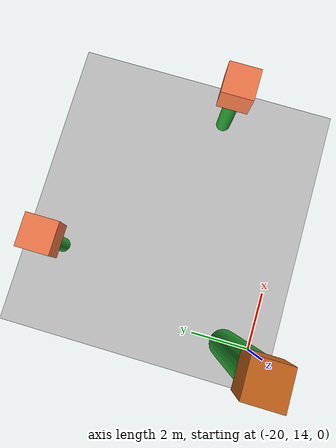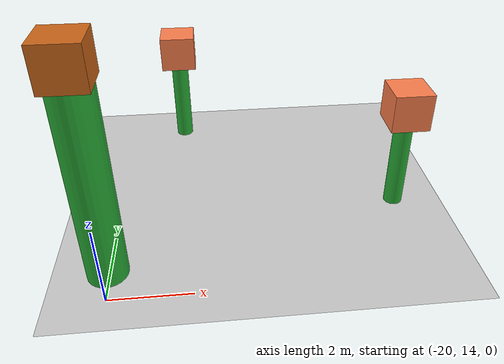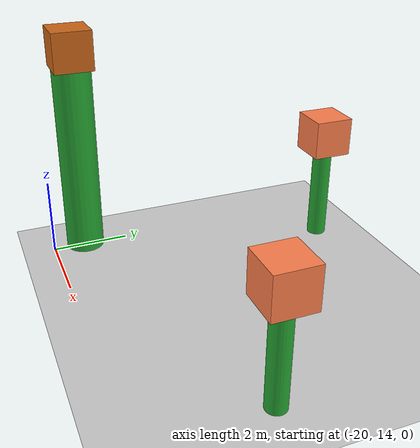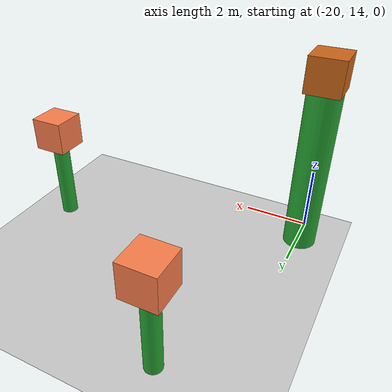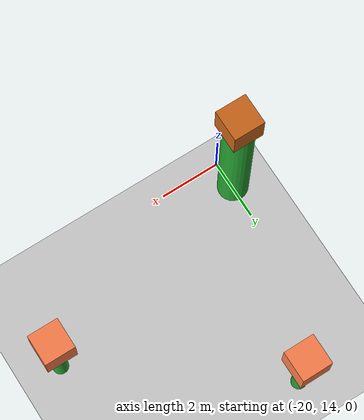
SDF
<sdf version="1.7">
 <world name="default">
  <model name="ground_plane">
   <static>1</static>
   <link name="link">
    <collision name="collision">
     <geometry><plane><normal>0 0 1</normal><size>100 100</size></plane></geometry>
     <surface>
      <contact><collide_bitmask>65535</collide_bitmask></contact>
      <friction><ode><mu>100</mu><mu2>50</mu2></ode></friction>
     </surface>
    </collision>
    <visual name="visual">
     <cast_shadows>0</cast_shadows>
     <geometry><plane><normal>0 0 1</normal><size>100 100</size></plane></geometry>
     <material>
      <script><uri>file://media/materials/scripts/gazebo.material</uri><name>Gazebo/Grey</name></script>
     </material>
    </visual>
   </link>
  </model>
  <model name="unit_cylinder_green_2_clone_clone_3_clone_0_clone_0_clone_15">
   <link name="link">
    <inertial>
     <mass>1</mass>
     <inertia><ixx>0.145833</ixx><ixy>0</ixy><ixz>0</ixz><iyy>0.145833</iyy><iyz>0</iyz><izz>0.125</izz></inertia>
    </inertial>
    <visual name="visual">
     <geometry><cylinder><radius>0.5</radius><length>5</length></cylinder></geometry>
     <material>
      <script><name>Gazebo/Green</name><uri>file://media/materials/scripts/gazebo.material</uri></script>
      <shader type="pixel"><normal_map>__default__</normal_map></shader>
      <ambient>0 1 0.3 1</ambient>
      <diffuse>0.7 0.7 0.7 1</diffuse>
      <specular>0.01 0.01 0.01 1</specular>
      <emissive>0 0 0 1</emissive>
     </material>
    </visual>
    <collision name="collision">
     <geometry><cylinder><radius>0.5</radius><length>5</length></cylinder></geometry>
     <surface>
      <friction>
       <ode><mu>1</mu><mu2>1</mu2><fdir1>0 0 0</fdir1><slip1>0</slip1><slip2>0</slip2></ode>
       <torsional>
        <coefficient>1</coefficient>
        <patch_radius>0</patch_radius>
        <surface_radius>0</surface_radius>
        <use_patch_radius>1</use_patch_radius>
        <ode><slip>0</slip></ode>
       </torsional>
      </friction>
      <bounce><restitution_coefficient>0</restitution_coefficient><threshold>1e+06</threshold></bounce>
      <contact>
       <collide_without_contact>0</collide_without_contact>
       <collide_without_contact_bitmask>1</collide_without_contact_bitmask>
       <collide_bitmask>1</collide_bitmask>
       <ode>
        <soft_cfm>0</soft_cfm>
        <soft_erp>0.2</soft_erp>
        <kp>1e+13</kp>
        <kd>1</kd>
        <max_vel>0.01</max_vel>
        <min_depth>0</min_depth>
       </ode>
       <bullet>
        <split_impulse>1</split_impulse>
        <split_impulse_penetration_threshold>-0.01</split_impulse_penetration_threshold>
        <soft_cfm>0</soft_cfm>
        <soft_erp>0.2</soft_erp>
        <kp>1e+13</kp>
        <kd>1</kd>
       </bullet>
      </contact>
     </surface>
    </collision>
   </link>
   <link name="link_3">
    <inertial>
     <mass>1</mass>
     <inertia>
      <ixx>0.166667</ixx>
      <ixy>0</ixy>
      <ixz>0</ixz>
      <iyy>0.166667</iyy>
      <iyz>0</iyz>
      <izz>0.166667</izz>
     </inertia>
    </inertial>
    <pose>0 0 3 0 -0 0.000935</pose>
    <visual name="visual">
     <geometry><box><size>1 1 1</size></box></geometry>
     <material>
      <lighting>1</lighting>
      <script><uri>file://media/materials/scripts/gazebo.material</uri><name>Gazebo/Grey</name></script>
      <shader type="pixel"><normal_map>__default__</normal_map></shader>
      <ambient>0.8 0.4 0.1 1</ambient>
      <diffuse>0.7 0.7 0.7 1</diffuse>
      <specular>0.01 0.01 0.01 1</specular>
      <emissive>0 0 0 1</emissive>
     </material>
    </visual>
    <collision name="collision">
     <geometry><box><size>1 1 1</size></box></geometry>
     <surface>
      <friction>
       <ode><mu>1</mu><mu2>1</mu2><fdir1>0 0 0</fdir1><slip1>0</slip1><slip2>0</slip2></ode>
       <torsional>
        <coefficient>1</coefficient>
        <patch_radius>0</patch_radius>
        <surface_radius>0</surface_radius>
        <use_patch_radius>1</use_patch_radius>
        <ode><slip>0</slip></ode>
       </torsional>
      </friction>
      <bounce><restitution_coefficient>0</restitution_coefficient><threshold>1e+06</threshold></bounce>
      <contact>
       <collide_without_contact>0</collide_without_contact>
       <collide_without_contact_bitmask>1</collide_without_contact_bitmask>
       <collide_bitmask>1</collide_bitmask>
       <ode>
        <soft_cfm>0</soft_cfm>
        <soft_erp>0.2</soft_erp>
        <kp>1e+13</kp>
        <kd>1</kd>
        <max_vel>0.01</max_vel>
        <min_depth>0</min_depth>
       </ode>
       <bullet>
        <split_impulse>1</split_impulse>
        <split_impulse_penetration_threshold>-0.01</split_impulse_penetration_threshold>
        <soft_cfm>0</soft_cfm>
        <soft_erp>0.2</soft_erp>
        <kp>1e+13</kp>
        <kd>1</kd>
       </bullet>
      </contact>
     </surface>
    </collision>
   </link>
   <static>1</static>
   <pose>-20.0541 14.8651 2.49999 0 0 -0.000935</pose>
  </model>
  <model name="unit_cylinder_green_2_clone_clone_3_clone_0_clone_0_clone_47">
   <link name="link">
    <inertial>
     <mass>1</mass>
     <inertia><ixx>0.145833</ixx><ixy>0</ixy><ixz>0</ixz><iyy>0.145833</iyy><iyz>0</iyz><izz>0.125</izz></inertia>
    </inertial>
    <pose>0 0 -1.25 0 -0 0</pose>
    <visual name="visual">
     <geometry><cylinder><radius>0.25</radius><length>2.5</length></cylinder></geometry>
     <material>
      <script><name>Gazebo/Green</name><uri>file://media/materials/scripts/gazebo.material</uri></script>
      <shader type="pixel"><normal_map>__default__</normal_map></shader>
      <ambient>0 1 0.3 1</ambient>
      <diffuse>0.7 0.7 0.7 1</diffuse>
      <specular>0.01 0.01 0.01 1</specular>
      <emissive>0 0 0 1</emissive>
     </material>
    </visual>
    <collision name="collision">
     <geometry><cylinder><radius>0.5</radius><length>5</length></cylinder></geometry>
     <surface>
      <friction>
       <ode><mu>1</mu><mu2>1</mu2><fdir1>0 0 0</fdir1><slip1>0</slip1><slip2>0</slip2></ode>
       <torsional>
        <coefficient>1</coefficient>
        <patch_radius>0</patch_radius>
        <surface_radius>0</surface_radius>
        <use_patch_radius>1</use_patch_radius>
        <ode><slip>0</slip></ode>
       </torsional>
      </friction>
      <bounce><restitution_coefficient>0</restitution_coefficient><threshold>1e+06</threshold></bounce>
      <contact>
       <collide_without_contact>0</collide_without_contact>
       <collide_without_contact_bitmask>1</collide_without_contact_bitmask>
       <collide_bitmask>1</collide_bitmask>
       <ode>
        <soft_cfm>0</soft_cfm>
        <soft_erp>0.2</soft_erp>
        <kp>1e+13</kp>
        <kd>1</kd>
        <max_vel>0.01</max_vel>
        <min_depth>0</min_depth>
       </ode>
       <bullet>
        <split_impulse>1</split_impulse>
        <split_impulse_penetration_threshold>-0.01</split_impulse_penetration_threshold>
        <soft_cfm>0</soft_cfm>
        <soft_erp>0.2</soft_erp>
        <kp>1e+13</kp>
        <kd>1</kd>
       </bullet>
      </contact>
     </surface>
    </collision>
   </link>
   <link name="link_3">
    <inertial>
     <mass>1</mass>
     <inertia>
      <ixx>0.166667</ixx>
      <ixy>0</ixy>
      <ixz>0</ixz>
      <iyy>0.166667</iyy>
      <iyz>0</iyz>
      <izz>0.166667</izz>
     </inertia>
    </inertial>
    <pose>0 0 0.5 0 -0 0.000935</pose>
    <visual name="visual">
     <geometry><box><size>1 1 1</size></box></geometry>
     <material>
      <lighting>1</lighting>
      <script><uri>file://media/materials/scripts/gazebo.material</uri><name>Gazebo/Grey</name></script>
      <shader type="pixel"><normal_map>__default__</normal_map></shader>
      <ambient>1 0.5 0.3 1</ambient>
      <diffuse>0.7 0.7 0.7 1</diffuse>
      <specular>0.01 0.01 0.01 1</specular>
      <emissive>0 0 0 1</emissive>
     </material>
    </visual>
    <collision name="collision">
     <geometry><box><size>1 1 1</size></box></geometry>
     <surface>
      <friction>
       <ode><mu>1</mu><mu2>1</mu2><fdir1>0 0 0</fdir1><slip1>0</slip1><slip2>0</slip2></ode>
       <torsional>
        <coefficient>1</coefficient>
        <patch_radius>0</patch_radius>
        <surface_radius>0</surface_radius>
        <use_patch_radius>1</use_patch_radius>
        <ode><slip>0</slip></ode>
       </torsional>
      </friction>
      <bounce><restitution_coefficient>0</restitution_coefficient><threshold>1e+06</threshold></bounce>
      <contact>
       <collide_without_contact>0</collide_without_contact>
       <collide_without_contact_bitmask>1</collide_without_contact_bitmask>
       <collide_bitmask>1</collide_bitmask>
       <ode>
        <soft_cfm>0</soft_cfm>
        <soft_erp>0.2</soft_erp>
        <kp>1e+13</kp>
        <kd>1</kd>
        <max_vel>0.01</max_vel>
        <min_depth>0</min_depth>
       </ode>
       <bullet>
        <split_impulse>1</split_impulse>
        <split_impulse_penetration_threshold>-0.01</split_impulse_penetration_threshold>
        <soft_cfm>0</soft_cfm>
        <soft_erp>0.2</soft_erp>
        <kp>1e+13</kp>
        <kd>1</kd>
       </bullet>
      </contact>
     </surface>
    </collision>
   </link>
   <static>1</static>
   <pose>-12.4452 16.9287 2.49999 0 0 -0.000935</pose>
  </model>
  <model name="unit_cylinder_green_2_clone_clone_3_clone_0_clone_0_clone_94">
   <link name="link">
    <inertial>
     <mass>1</mass>
     <inertia><ixx>0.145833</ixx><ixy>0</ixy><ixz>0</ixz><iyy>0.145833</iyy><iyz>0</iyz><izz>0.125</izz></inertia>
    </inertial>
    <pose>0 0 -1.25 0 -0 0</pose>
    <visual name="visual">
     <geometry><cylinder><radius>0.25</radius><length>2.5</length></cylinder></geometry>
     <material>
      <script><name>Gazebo/Green</name><uri>file://media/materials/scripts/gazebo.material</uri></script>
      <shader type="pixel"><normal_map>__default__</normal_map></shader>
      <ambient>0 1 0.3 1</ambient>
      <diffuse>0.7 0.7 0.7 1</diffuse>
      <specular>0.01 0.01 0.01 1</specular>
      <emissive>0 0 0 1</emissive>
     </material>
    </visual>
    <collision name="collision">
     <geometry><cylinder><radius>0.5</radius><length>5</length></cylinder></geometry>
     <surface>
      <friction>
       <ode><mu>1</mu><mu2>1</mu2><fdir1>0 0 0</fdir1><slip1>0</slip1><slip2>0</slip2></ode>
       <torsional>
        <coefficient>1</coefficient>
        <patch_radius>0</patch_radius>
        <surface_radius>0</surface_radius>
        <use_patch_radius>1</use_patch_radius>
        <ode><slip>0</slip></ode>
       </torsional>
      </friction>
      <bounce><restitution_coefficient>0</restitution_coefficient><threshold>1e+06</threshold></bounce>
      <contact>
       <collide_without_contact>0</collide_without_contact>
       <collide_without_contact_bitmask>1</collide_without_contact_bitmask>
       <collide_bitmask>1</collide_bitmask>
       <ode>
        <soft_cfm>0</soft_cfm>
        <soft_erp>0.2</soft_erp>
        <kp>1e+13</kp>
        <kd>1</kd>
        <max_vel>0.01</max_vel>
        <min_depth>0</min_depth>
       </ode>
       <bullet>
        <split_impulse>1</split_impulse>
        <split_impulse_penetration_threshold>-0.01</split_impulse_penetration_threshold>
        <soft_cfm>0</soft_cfm>
        <soft_erp>0.2</soft_erp>
        <kp>1e+13</kp>
        <kd>1</kd>
       </bullet>
      </contact>
     </surface>
    </collision>
   </link>
   <link name="link_3">
    <inertial>
     <mass>1</mass>
     <inertia>
      <ixx>0.166667</ixx>
      <ixy>0</ixy>
      <ixz>0</ixz>
      <iyy>0.166667</iyy>
      <iyz>0</iyz>
      <izz>0.166667</izz>
     </inertia>
    </inertial>
    <pose>0 0 0.5 0 -0 0.000935</pose>
    <visual name="visual">
     <geometry><box><size>1 1 1</size></box></geometry>
     <material>
      <lighting>1</lighting>
      <script><uri>file://media/materials/scripts/gazebo.material</uri><name>Gazebo/Grey</name></script>
      <shader type="pixel"><normal_map>__default__</normal_map></shader>
      <ambient>1 0.5 0.3 1</ambient>
      <diffuse>0.7 0.7 0.7 1</diffuse>
      <specular>0.01 0.01 0.01 1</specular>
      <emissive>0 0 0 1</emissive>
     </material>
    </visual>
    <collision name="collision">
     <geometry><box><size>1 1 1</size></box></geometry>
     <surface>
      <friction>
       <ode><mu>1</mu><mu2>1</mu2><fdir1>0 0 0</fdir1><slip1>0</slip1><slip2>0</slip2></ode>
       <torsional>
        <coefficient>1</coefficient>
        <patch_radius>0</patch_radius>
        <surface_radius>0</surface_radius>
        <use_patch_radius>1</use_patch_radius>
        <ode><slip>0</slip></ode>
       </torsional>
      </friction>
      <bounce><restitution_coefficient>0</restitution_coefficient><threshold>1e+06</threshold></bounce>
      <contact>
       <collide_without_contact>0</collide_without_contact>
       <collide_without_contact_bitmask>1</collide_without_contact_bitmask>
       <collide_bitmask>1</collide_bitmask>
       <ode>
        <soft_cfm>0</soft_cfm>
        <soft_erp>0.2</soft_erp>
        <kp>1e+13</kp>
        <kd>1</kd>
        <max_vel>0.01</max_vel>
        <min_depth>0</min_depth>
       </ode>
       <bullet>
        <split_impulse>1</split_impulse>
        <split_impulse_penetration_threshold>-0.01</split_impulse_penetration_threshold>
        <soft_cfm>0</soft_cfm>
        <soft_erp>0.2</soft_erp>
        <kp>1e+13</kp>
        <kd>1</kd>
       </bullet>
      </contact>
     </surface>
    </collision>
   </link>
   <static>1</static>
   <pose>-18.3362 21.2155 2.49999 0 0 -0.000935</pose>
  </model>
 </world>
</sdf>
